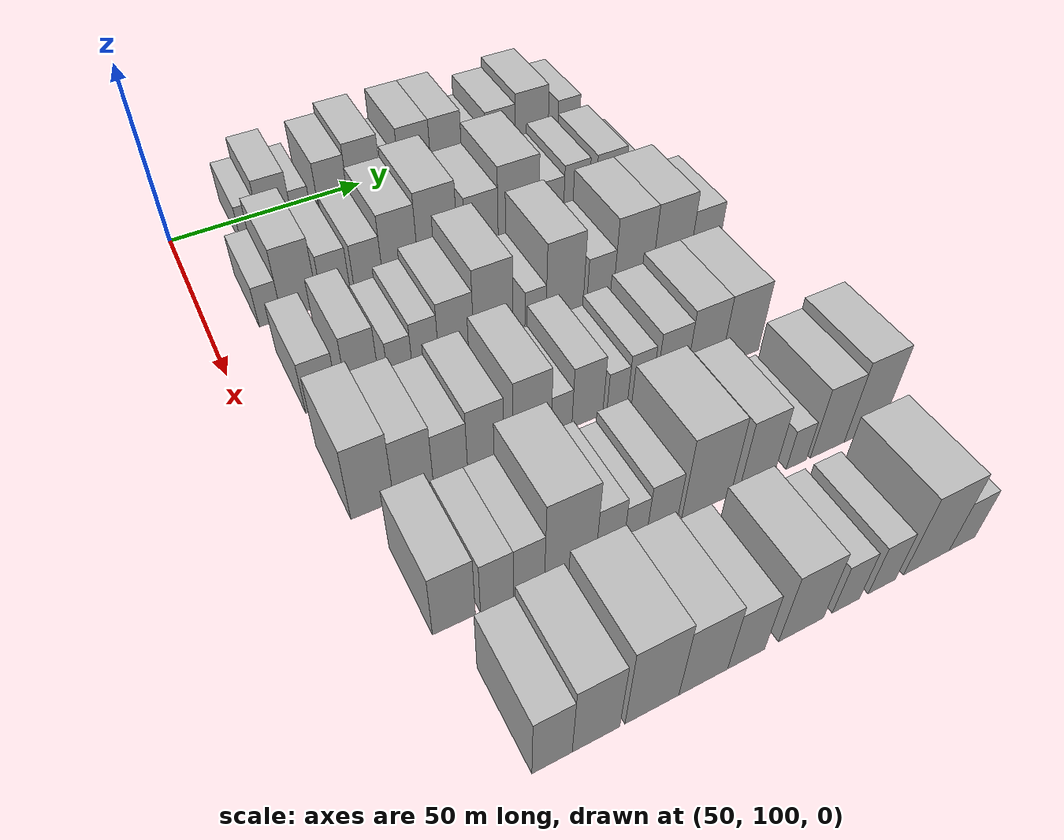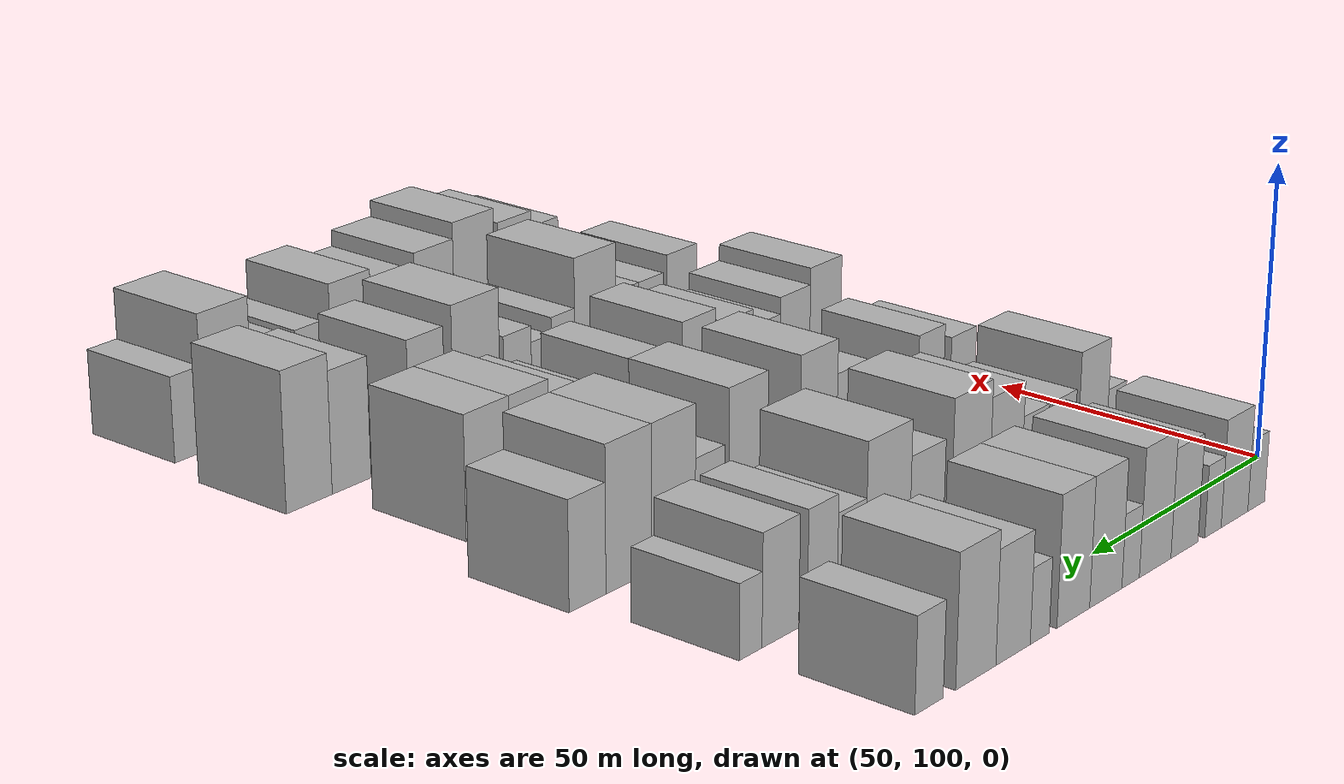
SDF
<sdf version="1.6">
 <world name="default">
  <model name="building_71">
   <static>1</static>
   <pose>50.0000 117.9902 0 0.000000 0.000000 0.000000</pose>
   <link name="link">
    <pose>0 0 6.00 0 0 0</pose>
    <collision name="collision"><geometry><box><size>20.0000 5.2758 12.0000</size></box></geometry></collision>
    <visual name="visual">
     <cast_shadows>0</cast_shadows>
     <geometry><box><size>20.0000 5.2758 12.0000</size></box></geometry>
     <material>
      <script>
       <uri>model://HANNAS_wall/materials/scripts</uri>
       <uri>model://HANNAS_wall/materials/textures</uri>
       <name>vrc/HANNAS_wall</name>
      </script>
     </material>
    </visual>
   </link>
  </model>
  <model name="building_72">
   <static>1</static>
   <pose>50.0000 124.7291 0 0.000000 0.000000 0.000000</pose>
   <link name="link">
    <pose>0 0 9.00 0 0 0</pose>
    <collision name="collision"><geometry><box><size>20.0000 8.2020 18.0000</size></box></geometry></collision>
    <visual name="visual">
     <cast_shadows>0</cast_shadows>
     <geometry><box><size>20.0000 8.2020 18.0000</size></box></geometry>
     <material>
      <script>
       <uri>model://HANNAS_wall/materials/scripts</uri>
       <uri>model://HANNAS_wall/materials/textures</uri>
       <name>vrc/HANNAS_wall</name>
      </script>
     </material>
    </visual>
   </link>
  </model>
  <model name="building_73">
   <static>1</static>
   <pose>50.0000 131.2964 0 0.000000 0.000000 0.000000</pose>
   <link name="link">
    <pose>0 0 6.00 0 0 0</pose>
    <collision name="collision"><geometry><box><size>20.0000 4.9325 12.0000</size></box></geometry></collision>
    <visual name="visual">
     <cast_shadows>0</cast_shadows>
     <geometry><box><size>20.0000 4.9325 12.0000</size></box></geometry>
     <material>
      <script>
       <uri>model://HANNAS_wall/materials/scripts</uri>
       <uri>model://HANNAS_wall/materials/textures</uri>
       <name>vrc/HANNAS_wall</name>
      </script>
     </material>
    </visual>
   </link>
  </model>
  <model name="building_74">
   <static>1</static>
   <pose>50.0000 139.7619 0 0.000000 0.000000 0.000000</pose>
   <link name="link">
    <pose>0 0 9.00 0 0 0</pose>
    <collision name="collision"><geometry><box><size>20.0000 7.9987 18.0000</size></box></geometry></collision>
    <visual name="visual">
     <cast_shadows>0</cast_shadows>
     <geometry><box><size>20.0000 7.9987 18.0000</size></box></geometry>
     <material>
      <script>
       <uri>model://HANNAS_wall/materials/scripts</uri>
       <uri>model://HANNAS_wall/materials/textures</uri>
       <name>vrc/HANNAS_wall</name>
      </script>
     </material>
    </visual>
   </link>
  </model>
  <model name="building_75">
   <static>1</static>
   <pose>50.0000 148.2903 0 0.000000 0.000000 0.000000</pose>
   <link name="link">
    <pose>0 0 10.50 0 0 0</pose>
    <collision name="collision"><geometry><box><size>20.0000 9.0580 21.0000</size></box></geometry></collision>
    <visual name="visual">
     <cast_shadows>0</cast_shadows>
     <geometry><box><size>20.0000 9.0580 21.0000</size></box></geometry>
     <material>
      <script>
       <uri>model://HANNAS_wall/materials/scripts</uri>
       <uri>model://HANNAS_wall/materials/textures</uri>
       <name>vrc/HANNAS_wall</name>
      </script>
     </material>
    </visual>
   </link>
  </model>
  <model name="building_76">
   <static>1</static>
   <pose>50.0000 155.2801 0 0.000000 0.000000 0.000000</pose>
   <link name="link">
    <pose>0 0 6.00 0 0 0</pose>
    <collision name="collision"><geometry><box><size>20.0000 4.9215 12.0000</size></box></geometry></collision>
    <visual name="visual">
     <cast_shadows>0</cast_shadows>
     <geometry><box><size>20.0000 4.9215 12.0000</size></box></geometry>
     <material>
      <script>
       <uri>model://HANNAS_wall/materials/scripts</uri>
       <uri>model://HANNAS_wall/materials/textures</uri>
       <name>vrc/HANNAS_wall</name>
      </script>
     </material>
    </visual>
   </link>
  </model>
  <model name="building_77">
   <static>1</static>
   <pose>50.0000 162.1785 0 0.000000 0.000000 0.000000</pose>
   <link name="link">
    <pose>0 0 10.50 0 0 0</pose>
    <collision name="collision"><geometry><box><size>20.0000 8.8755 21.0000</size></box></geometry></collision>
    <visual name="visual">
     <cast_shadows>0</cast_shadows>
     <geometry><box><size>20.0000 8.8755 21.0000</size></box></geometry>
     <material>
      <script>
       <uri>model://HANNAS_wall/materials/scripts</uri>
       <uri>model://HANNAS_wall/materials/textures</uri>
       <name>vrc/HANNAS_wall</name>
      </script>
     </material>
    </visual>
   </link>
  </model>
  <model name="building_78">
   <static>1</static>
   <pose>50.0000 170.9984 0 0.000000 0.000000 0.000000</pose>
   <link name="link">
    <pose>0 0 10.50 0 0 0</pose>
    <collision name="collision"><geometry><box><size>20.0000 8.7642 21.0000</size></box></geometry></collision>
    <visual name="visual">
     <cast_shadows>0</cast_shadows>
     <geometry><box><size>20.0000 8.7642 21.0000</size></box></geometry>
     <material>
      <script>
       <uri>model://HANNAS_wall/materials/scripts</uri>
       <uri>model://HANNAS_wall/materials/textures</uri>
       <name>vrc/HANNAS_wall</name>
      </script>
     </material>
    </visual>
   </link>
  </model>
  <model name="building_79">
   <static>1</static>
   <pose>50.0000 179.8649 0 0.000000 0.000000 0.000000</pose>
   <link name="link">
    <pose>0 0 6.00 0 0 0</pose>
    <collision name="collision"><geometry><box><size>20.0000 4.9689 12.0000</size></box></geometry></collision>
    <visual name="visual">
     <cast_shadows>0</cast_shadows>
     <geometry><box><size>20.0000 4.9689 12.0000</size></box></geometry>
     <material>
      <script>
       <uri>model://HANNAS_wall/materials/scripts</uri>
       <uri>model://HANNAS_wall/materials/textures</uri>
       <name>vrc/HANNAS_wall</name>
      </script>
     </material>
    </visual>
   </link>
  </model>
  <model name="building_80">
   <static>1</static>
   <pose>50.0000 186.7361 0 0.000000 0.000000 0.000000</pose>
   <link name="link">
    <pose>0 0 9.00 0 0 0</pose>
    <collision name="collision"><geometry><box><size>20.0000 8.7735 18.0000</size></box></geometry></collision>
    <visual name="visual">
     <cast_shadows>0</cast_shadows>
     <geometry><box><size>20.0000 8.7735 18.0000</size></box></geometry>
     <material>
      <script>
       <uri>model://HANNAS_wall/materials/scripts</uri>
       <uri>model://HANNAS_wall/materials/textures</uri>
       <name>vrc/HANNAS_wall</name>
      </script>
     </material>
    </visual>
   </link>
  </model>
  <model name="building_81">
   <static>1</static>
   <pose>50.0000 196.1083 0 0.000000 0.000000 0.000000</pose>
   <link name="link">
    <pose>0 0 10.50 0 0 0</pose>
    <collision name="collision"><geometry><box><size>20.0000 9.9709 21.0000</size></box></geometry></collision>
    <visual name="visual">
     <cast_shadows>0</cast_shadows>
     <geometry><box><size>20.0000 9.9709 21.0000</size></box></geometry>
     <material>
      <script>
       <uri>model://HANNAS_wall/materials/scripts</uri>
       <uri>model://HANNAS_wall/materials/textures</uri>
       <name>vrc/HANNAS_wall</name>
      </script>
     </material>
    </visual>
   </link>
  </model>
  <model name="building_82">
   <static>1</static>
   <pose>50.0000 207.4845 0 0.000000 0.000000 0.000000</pose>
   <link name="link">
    <pose>0 0 7.50 0 0 0</pose>
    <collision name="collision"><geometry><box><size>20.0000 6.7815 15.0000</size></box></geometry></collision>
    <visual name="visual">
     <cast_shadows>0</cast_shadows>
     <geometry><box><size>20.0000 6.7815 15.0000</size></box></geometry>
     <material>
      <script>
       <uri>model://HANNAS_wall/materials/scripts</uri>
       <uri>model://HANNAS_wall/materials/textures</uri>
       <name>vrc/HANNAS_wall</name>
      </script>
     </material>
    </visual>
   </link>
  </model>
  <model name="building_182">
   <static>1</static>
   <pose>79.0000 113.4474 0 0.000000 0.000000 0.000000</pose>
   <link name="link">
    <pose>0 0 6.00 0 0 0</pose>
    <collision name="collision"><geometry><box><size>20.0000 5.4174 12.0000</size></box></geometry></collision>
    <visual name="visual">
     <cast_shadows>0</cast_shadows>
     <geometry><box><size>20.0000 5.4174 12.0000</size></box></geometry>
     <material>
      <script>
       <uri>model://HANNAS_wall/materials/scripts</uri>
       <uri>model://HANNAS_wall/materials/textures</uri>
       <name>vrc/HANNAS_wall</name>
      </script>
     </material>
    </visual>
   </link>
  </model>
  <model name="building_183">
   <static>1</static>
   <pose>79.0000 120.5263 0 0.000000 0.000000 0.000000</pose>
   <link name="link">
    <pose>0 0 10.50 0 0 0</pose>
    <collision name="collision"><geometry><box><size>20.0000 8.7404 21.0000</size></box></geometry></collision>
    <visual name="visual">
     <cast_shadows>0</cast_shadows>
     <geometry><box><size>20.0000 8.7404 21.0000</size></box></geometry>
     <material>
      <script>
       <uri>model://HANNAS_wall/materials/scripts</uri>
       <uri>model://HANNAS_wall/materials/textures</uri>
       <name>vrc/HANNAS_wall</name>
      </script>
     </material>
    </visual>
   </link>
  </model>
  <model name="building_184">
   <static>1</static>
   <pose>79.0000 129.3909 0 0.000000 0.000000 0.000000</pose>
   <link name="link">
    <pose>0 0 7.50 0 0 0</pose>
    <collision name="collision"><geometry><box><size>20.0000 6.9887 15.0000</size></box></geometry></collision>
    <visual name="visual">
     <cast_shadows>0</cast_shadows>
     <geometry><box><size>20.0000 6.9887 15.0000</size></box></geometry>
     <material>
      <script>
       <uri>model://HANNAS_wall/materials/scripts</uri>
       <uri>model://HANNAS_wall/materials/textures</uri>
       <name>vrc/HANNAS_wall</name>
      </script>
     </material>
    </visual>
   </link>
  </model>
  <model name="building_185">
   <static>1</static>
   <pose>79.0000 137.4964 0 0.000000 0.000000 0.000000</pose>
   <link name="link">
    <pose>0 0 7.50 0 0 0</pose>
    <collision name="collision"><geometry><box><size>20.0000 7.2224 15.0000</size></box></geometry></collision>
    <visual name="visual">
     <cast_shadows>0</cast_shadows>
     <geometry><box><size>20.0000 7.2224 15.0000</size></box></geometry>
     <material>
      <script>
       <uri>model://HANNAS_wall/materials/scripts</uri>
       <uri>model://HANNAS_wall/materials/textures</uri>
       <name>vrc/HANNAS_wall</name>
      </script>
     </material>
    </visual>
   </link>
  </model>
  <model name="building_186">
   <static>1</static>
   <pose>79.0000 145.6397 0 0.000000 0.000000 0.000000</pose>
   <link name="link">
    <pose>0 0 10.50 0 0 0</pose>
    <collision name="collision"><geometry><box><size>20.0000 9.0642 21.0000</size></box></geometry></collision>
    <visual name="visual">
     <cast_shadows>0</cast_shadows>
     <geometry><box><size>20.0000 9.0642 21.0000</size></box></geometry>
     <material>
      <script>
       <uri>model://HANNAS_wall/materials/scripts</uri>
       <uri>model://HANNAS_wall/materials/textures</uri>
       <name>vrc/HANNAS_wall</name>
      </script>
     </material>
    </visual>
   </link>
  </model>
  <model name="building_187">
   <static>1</static>
   <pose>79.0000 155.3525 0 0.000000 0.000000 0.000000</pose>
   <link name="link">
    <pose>0 0 12.00 0 0 0</pose>
    <collision name="collision"><geometry><box><size>20.0000 10.3614 24.0000</size></box></geometry></collision>
    <visual name="visual">
     <cast_shadows>0</cast_shadows>
     <geometry><box><size>20.0000 10.3614 24.0000</size></box></geometry>
     <material>
      <script>
       <uri>model://HANNAS_wall/materials/scripts</uri>
       <uri>model://HANNAS_wall/materials/textures</uri>
       <name>vrc/HANNAS_wall</name>
      </script>
     </material>
    </visual>
   </link>
  </model>
  <model name="building_188">
   <static>1</static>
   <pose>79.0000 167.0000 0 0.000000 0.000000 0.000000</pose>
   <link name="link">
    <pose>0 0 9.00 0 0 0</pose>
    <collision name="collision"><geometry><box><size>20.0000 8.9337 18.0000</size></box></geometry></collision>
    <visual name="visual">
     <cast_shadows>0</cast_shadows>
     <geometry><box><size>20.0000 8.9337 18.0000</size></box></geometry>
     <material>
      <script>
       <uri>model://HANNAS_wall/materials/scripts</uri>
       <uri>model://HANNAS_wall/materials/textures</uri>
       <name>vrc/HANNAS_wall</name>
      </script>
     </material>
    </visual>
   </link>
  </model>
  <model name="building_189">
   <static>1</static>
   <pose>79.0000 177.0766 0 0.000000 0.000000 0.000000</pose>
   <link name="link">
    <pose>0 0 12.00 0 0 0</pose>
    <collision name="collision"><geometry><box><size>20.0000 11.2196 24.0000</size></box></geometry></collision>
    <visual name="visual">
     <cast_shadows>0</cast_shadows>
     <geometry><box><size>20.0000 11.2196 24.0000</size></box></geometry>
     <material>
      <script>
       <uri>model://HANNAS_wall/materials/scripts</uri>
       <uri>model://HANNAS_wall/materials/textures</uri>
       <name>vrc/HANNAS_wall</name>
      </script>
     </material>
    </visual>
   </link>
  </model>
  <model name="building_190">
   <static>1</static>
   <pose>79.0000 186.1910 0 0.000000 0.000000 0.000000</pose>
   <link name="link">
    <pose>0 0 7.50 0 0 0</pose>
    <collision name="collision"><geometry><box><size>20.0000 7.0092 15.0000</size></box></geometry></collision>
    <visual name="visual">
     <cast_shadows>0</cast_shadows>
     <geometry><box><size>20.0000 7.0092 15.0000</size></box></geometry>
     <material>
      <script>
       <uri>model://HANNAS_wall/materials/scripts</uri>
       <uri>model://HANNAS_wall/materials/textures</uri>
       <name>vrc/HANNAS_wall</name>
      </script>
     </material>
    </visual>
   </link>
  </model>
  <model name="building_191">
   <static>1</static>
   <pose>79.0000 193.2999 0 0.000000 0.000000 0.000000</pose>
   <link name="link">
    <pose>0 0 9.00 0 0 0</pose>
    <collision name="collision"><geometry><box><size>20.0000 7.2085 18.0000</size></box></geometry></collision>
    <visual name="visual">
     <cast_shadows>0</cast_shadows>
     <geometry><box><size>20.0000 7.2085 18.0000</size></box></geometry>
     <material>
      <script>
       <uri>model://HANNAS_wall/materials/scripts</uri>
       <uri>model://HANNAS_wall/materials/textures</uri>
       <name>vrc/HANNAS_wall</name>
      </script>
     </material>
    </visual>
   </link>
  </model>
  <model name="building_192">
   <static>1</static>
   <pose>79.0000 203.2547 0 0.000000 0.000000 0.000000</pose>
   <link name="link">
    <pose>0 0 9.00 0 0 0</pose>
    <collision name="collision"><geometry><box><size>20.0000 8.7010 18.0000</size></box></geometry></collision>
    <visual name="visual">
     <cast_shadows>0</cast_shadows>
     <geometry><box><size>20.0000 8.7010 18.0000</size></box></geometry>
     <material>
      <script>
       <uri>model://HANNAS_wall/materials/scripts</uri>
       <uri>model://HANNAS_wall/materials/textures</uri>
       <name>vrc/HANNAS_wall</name>
      </script>
     </material>
    </visual>
   </link>
  </model>
  <model name="building_193">
   <static>1</static>
   <pose>79.0000 210.2230 0 0.000000 0.000000 0.000000</pose>
   <link name="link">
    <pose>0 0 6.00 0 0 0</pose>
    <collision name="collision"><geometry><box><size>20.0000 5.2356 12.0000</size></box></geometry></collision>
    <visual name="visual">
     <cast_shadows>0</cast_shadows>
     <geometry><box><size>20.0000 5.2356 12.0000</size></box></geometry>
     <material>
      <script>
       <uri>model://HANNAS_wall/materials/scripts</uri>
       <uri>model://HANNAS_wall/materials/textures</uri>
       <name>vrc/HANNAS_wall</name>
      </script>
     </material>
    </visual>
   </link>
  </model>
  <model name="building_301">
   <static>1</static>
   <pose>108.0000 115.3726 0 0.000000 0.000000 0.000000</pose>
   <link name="link">
    <pose>0 0 7.50 0 0 0</pose>
    <collision name="collision"><geometry><box><size>20.0000 7.3047 15.0000</size></box></geometry></collision>
    <visual name="visual">
     <cast_shadows>0</cast_shadows>
     <geometry><box><size>20.0000 7.3047 15.0000</size></box></geometry>
     <material>
      <script>
       <uri>model://HANNAS_wall/materials/scripts</uri>
       <uri>model://HANNAS_wall/materials/textures</uri>
       <name>vrc/HANNAS_wall</name>
      </script>
     </material>
    </visual>
   </link>
  </model>
  <model name="building_302">
   <static>1</static>
   <pose>108.0000 124.7236 0 0.000000 0.000000 0.000000</pose>
   <link name="link">
    <pose>0 0 9.00 0 0 0</pose>
    <collision name="collision"><geometry><box><size>20.0000 7.3973 18.0000</size></box></geometry></collision>
    <visual name="visual">
     <cast_shadows>0</cast_shadows>
     <geometry><box><size>20.0000 7.3973 18.0000</size></box></geometry>
     <material>
      <script>
       <uri>model://HANNAS_wall/materials/scripts</uri>
       <uri>model://HANNAS_wall/materials/textures</uri>
       <name>vrc/HANNAS_wall</name>
      </script>
     </material>
    </visual>
   </link>
  </model>
  <model name="building_303">
   <static>1</static>
   <pose>108.0000 133.2756 0 0.000000 0.000000 0.000000</pose>
   <link name="link">
    <pose>0 0 6.00 0 0 0</pose>
    <collision name="collision"><geometry><box><size>20.0000 5.7067 12.0000</size></box></geometry></collision>
    <visual name="visual">
     <cast_shadows>0</cast_shadows>
     <geometry><box><size>20.0000 5.7067 12.0000</size></box></geometry>
     <material>
      <script>
       <uri>model://HANNAS_wall/materials/scripts</uri>
       <uri>model://HANNAS_wall/materials/textures</uri>
       <name>vrc/HANNAS_wall</name>
      </script>
     </material>
    </visual>
   </link>
  </model>
  <model name="building_304">
   <static>1</static>
   <pose>108.0000 139.2570 0 0.000000 0.000000 0.000000</pose>
   <link name="link">
    <pose>0 0 7.50 0 0 0</pose>
    <collision name="collision"><geometry><box><size>20.0000 6.2562 15.0000</size></box></geometry></collision>
    <visual name="visual">
     <cast_shadows>0</cast_shadows>
     <geometry><box><size>20.0000 6.2562 15.0000</size></box></geometry>
     <material>
      <script>
       <uri>model://HANNAS_wall/materials/scripts</uri>
       <uri>model://HANNAS_wall/materials/textures</uri>
       <name>vrc/HANNAS_wall</name>
      </script>
     </material>
    </visual>
   </link>
  </model>
  <model name="building_305">
   <static>1</static>
   <pose>108.0000 146.6408 0 0.000000 0.000000 0.000000</pose>
   <link name="link">
    <pose>0 0 9.00 0 0 0</pose>
    <collision name="collision"><geometry><box><size>20.0000 8.5114 18.0000</size></box></geometry></collision>
    <visual name="visual">
     <cast_shadows>0</cast_shadows>
     <geometry><box><size>20.0000 8.5114 18.0000</size></box></geometry>
     <material>
      <script>
       <uri>model://HANNAS_wall/materials/scripts</uri>
       <uri>model://HANNAS_wall/materials/textures</uri>
       <name>vrc/HANNAS_wall</name>
      </script>
     </material>
    </visual>
   </link>
  </model>
  <model name="building_306">
   <static>1</static>
   <pose>108.0000 155.7515 0 0.000000 0.000000 0.000000</pose>
   <link name="link">
    <pose>0 0 12.00 0 0 0</pose>
    <collision name="collision"><geometry><box><size>20.0000 9.7099 24.0000</size></box></geometry></collision>
    <visual name="visual">
     <cast_shadows>0</cast_shadows>
     <geometry><box><size>20.0000 9.7099 24.0000</size></box></geometry>
     <material>
      <script>
       <uri>model://HANNAS_wall/materials/scripts</uri>
       <uri>model://HANNAS_wall/materials/textures</uri>
       <name>vrc/HANNAS_wall</name>
      </script>
     </material>
    </visual>
   </link>
  </model>
  <model name="building_307">
   <static>1</static>
   <pose>108.0000 166.3014 0 0.000000 0.000000 0.000000</pose>
   <link name="link">
    <pose>0 0 6.00 0 0 0</pose>
    <collision name="collision"><geometry><box><size>20.0000 5.3900 12.0000</size></box></geometry></collision>
    <visual name="visual">
     <cast_shadows>0</cast_shadows>
     <geometry><box><size>20.0000 5.3900 12.0000</size></box></geometry>
     <material>
      <script>
       <uri>model://HANNAS_wall/materials/scripts</uri>
       <uri>model://HANNAS_wall/materials/textures</uri>
       <name>vrc/HANNAS_wall</name>
      </script>
     </material>
    </visual>
   </link>
  </model>
  <model name="building_308">
   <static>1</static>
   <pose>108.0000 173.8607 0 0.000000 0.000000 0.000000</pose>
   <link name="link">
    <pose>0 0 12.00 0 0 0</pose>
    <collision name="collision"><geometry><box><size>20.0000 9.7286 24.0000</size></box></geometry></collision>
    <visual name="visual">
     <cast_shadows>0</cast_shadows>
     <geometry><box><size>20.0000 9.7286 24.0000</size></box></geometry>
     <material>
      <script>
       <uri>model://HANNAS_wall/materials/scripts</uri>
       <uri>model://HANNAS_wall/materials/textures</uri>
       <name>vrc/HANNAS_wall</name>
      </script>
     </material>
    </visual>
   </link>
  </model>
  <model name="building_309">
   <static>1</static>
   <pose>108.0000 183.3002 0 0.000000 0.000000 0.000000</pose>
   <link name="link">
    <pose>0 0 7.50 0 0 0</pose>
    <collision name="collision"><geometry><box><size>20.0000 7.1505 15.0000</size></box></geometry></collision>
    <visual name="visual">
     <cast_shadows>0</cast_shadows>
     <geometry><box><size>20.0000 7.1505 15.0000</size></box></geometry>
     <material>
      <script>
       <uri>model://HANNAS_wall/materials/scripts</uri>
       <uri>model://HANNAS_wall/materials/textures</uri>
       <name>vrc/HANNAS_wall</name>
      </script>
     </material>
    </visual>
   </link>
  </model>
  <model name="building_310">
   <static>1</static>
   <pose>108.0000 192.1241 0 0.000000 0.000000 0.000000</pose>
   <link name="link">
    <pose>0 0 12.00 0 0 0</pose>
    <collision name="collision"><geometry><box><size>20.0000 10.4971 24.0000</size></box></geometry></collision>
    <visual name="visual">
     <cast_shadows>0</cast_shadows>
     <geometry><box><size>20.0000 10.4971 24.0000</size></box></geometry>
     <material>
      <script>
       <uri>model://HANNAS_wall/materials/scripts</uri>
       <uri>model://HANNAS_wall/materials/textures</uri>
       <name>vrc/HANNAS_wall</name>
      </script>
     </material>
    </visual>
   </link>
  </model>
  <model name="building_311">
   <static>1</static>
   <pose>108.0000 202.6365 0 0.000000 0.000000 0.000000</pose>
   <link name="link">
    <pose>0 0 12.00 0 0 0</pose>
    <collision name="collision"><geometry><box><size>20.0000 10.5278 24.0000</size></box></geometry></collision>
    <visual name="visual">
     <cast_shadows>0</cast_shadows>
     <geometry><box><size>20.0000 10.5278 24.0000</size></box></geometry>
     <material>
      <script>
       <uri>model://HANNAS_wall/materials/scripts</uri>
       <uri>model://HANNAS_wall/materials/textures</uri>
       <name>vrc/HANNAS_wall</name>
      </script>
     </material>
    </visual>
   </link>
  </model>
  <model name="building_312">
   <static>1</static>
   <pose>108.0000 212.0618 0 0.000000 0.000000 0.000000</pose>
   <link name="link">
    <pose>0 0 9.00 0 0 0</pose>
    <collision name="collision"><geometry><box><size>20.0000 8.3226 18.0000</size></box></geometry></collision>
    <visual name="visual">
     <cast_shadows>0</cast_shadows>
     <geometry><box><size>20.0000 8.3226 18.0000</size></box></geometry>
     <material>
      <script>
       <uri>model://HANNAS_wall/materials/scripts</uri>
       <uri>model://HANNAS_wall/materials/textures</uri>
       <name>vrc/HANNAS_wall</name>
      </script>
     </material>
    </visual>
   </link>
  </model>
  <model name="building_416">
   <static>1</static>
   <pose>137.0000 115.1902 0 0.000000 0.000000 0.000000</pose>
   <link name="link">
    <pose>0 0 10.50 0 0 0</pose>
    <collision name="collision"><geometry><box><size>20.0000 8.9206 21.0000</size></box></geometry></collision>
    <visual name="visual">
     <cast_shadows>0</cast_shadows>
     <geometry><box><size>20.0000 8.9206 21.0000</size></box></geometry>
     <material>
      <script>
       <uri>model://HANNAS_wall/materials/scripts</uri>
       <uri>model://HANNAS_wall/materials/textures</uri>
       <name>vrc/HANNAS_wall</name>
      </script>
     </material>
    </visual>
   </link>
  </model>
  <model name="building_417">
   <static>1</static>
   <pose>137.0000 123.8461 0 0.000000 0.000000 0.000000</pose>
   <link name="link">
    <pose>0 0 9.00 0 0 0</pose>
    <collision name="collision"><geometry><box><size>20.0000 8.3913 18.0000</size></box></geometry></collision>
    <visual name="visual">
     <cast_shadows>0</cast_shadows>
     <geometry><box><size>20.0000 8.3913 18.0000</size></box></geometry>
     <material>
      <script>
       <uri>model://HANNAS_wall/materials/scripts</uri>
       <uri>model://HANNAS_wall/materials/textures</uri>
       <name>vrc/HANNAS_wall</name>
      </script>
     </material>
    </visual>
   </link>
  </model>
  <model name="building_418">
   <static>1</static>
   <pose>137.0000 131.7858 0 0.000000 0.000000 0.000000</pose>
   <link name="link">
    <pose>0 0 7.50 0 0 0</pose>
    <collision name="collision"><geometry><box><size>20.0000 7.4880 15.0000</size></box></geometry></collision>
    <visual name="visual">
     <cast_shadows>0</cast_shadows>
     <geometry><box><size>20.0000 7.4880 15.0000</size></box></geometry>
     <material>
      <script>
       <uri>model://HANNAS_wall/materials/scripts</uri>
       <uri>model://HANNAS_wall/materials/textures</uri>
       <name>vrc/HANNAS_wall</name>
      </script>
     </material>
    </visual>
   </link>
  </model>
  <model name="building_419">
   <static>1</static>
   <pose>137.0000 139.5929 0 0.000000 0.000000 0.000000</pose>
   <link name="link">
    <pose>0 0 9.00 0 0 0</pose>
    <collision name="collision"><geometry><box><size>20.0000 8.1262 18.0000</size></box></geometry></collision>
    <visual name="visual">
     <cast_shadows>0</cast_shadows>
     <geometry><box><size>20.0000 8.1262 18.0000</size></box></geometry>
     <material>
      <script>
       <uri>model://HANNAS_wall/materials/scripts</uri>
       <uri>model://HANNAS_wall/materials/textures</uri>
       <name>vrc/HANNAS_wall</name>
      </script>
     </material>
    </visual>
   </link>
  </model>
  <model name="building_420">
   <static>1</static>
   <pose>137.0000 150.0277 0 0.000000 0.000000 0.000000</pose>
   <link name="link">
    <pose>0 0 10.50 0 0 0</pose>
    <collision name="collision"><geometry><box><size>20.0000 8.7435 21.0000</size></box></geometry></collision>
    <visual name="visual">
     <cast_shadows>0</cast_shadows>
     <geometry><box><size>20.0000 8.7435 21.0000</size></box></geometry>
     <material>
      <script>
       <uri>model://HANNAS_wall/materials/scripts</uri>
       <uri>model://HANNAS_wall/materials/textures</uri>
       <name>vrc/HANNAS_wall</name>
      </script>
     </material>
    </visual>
   </link>
  </model>
  <model name="building_421">
   <static>1</static>
   <pose>137.0000 156.8727 0 0.000000 0.000000 0.000000</pose>
   <link name="link">
    <pose>0 0 6.00 0 0 0</pose>
    <collision name="collision"><geometry><box><size>20.0000 4.9464 12.0000</size></box></geometry></collision>
    <visual name="visual">
     <cast_shadows>0</cast_shadows>
     <geometry><box><size>20.0000 4.9464 12.0000</size></box></geometry>
     <material>
      <script>
       <uri>model://HANNAS_wall/materials/scripts</uri>
       <uri>model://HANNAS_wall/materials/textures</uri>
       <name>vrc/HANNAS_wall</name>
      </script>
     </material>
    </visual>
   </link>
  </model>
  <model name="building_422">
   <static>1</static>
   <pose>137.0000 163.0637 0 0.000000 0.000000 0.000000</pose>
   <link name="link">
    <pose>0 0 9.00 0 0 0</pose>
    <collision name="collision"><geometry><box><size>20.0000 7.4354 18.0000</size></box></geometry></collision>
    <visual name="visual">
     <cast_shadows>0</cast_shadows>
     <geometry><box><size>20.0000 7.4354 18.0000</size></box></geometry>
     <material>
      <script>
       <uri>model://HANNAS_wall/materials/scripts</uri>
       <uri>model://HANNAS_wall/materials/textures</uri>
       <name>vrc/HANNAS_wall</name>
      </script>
     </material>
    </visual>
   </link>
  </model>
  <model name="building_423">
   <static>1</static>
   <pose>137.0000 170.3075 0 0.000000 0.000000 0.000000</pose>
   <link name="link">
    <pose>0 0 6.00 0 0 0</pose>
    <collision name="collision"><geometry><box><size>20.0000 5.0522 12.0000</size></box></geometry></collision>
    <visual name="visual">
     <cast_shadows>0</cast_shadows>
     <geometry><box><size>20.0000 5.0522 12.0000</size></box></geometry>
     <material>
      <script>
       <uri>model://HANNAS_wall/materials/scripts</uri>
       <uri>model://HANNAS_wall/materials/textures</uri>
       <name>vrc/HANNAS_wall</name>
      </script>
     </material>
    </visual>
   </link>
  </model>
  <model name="building_424">
   <static>1</static>
   <pose>137.0000 175.8350 0 0.000000 0.000000 0.000000</pose>
   <link name="link">
    <pose>0 0 7.50 0 0 0</pose>
    <collision name="collision"><geometry><box><size>20.0000 6.0028 15.0000</size></box></geometry></collision>
    <visual name="visual">
     <cast_shadows>0</cast_shadows>
     <geometry><box><size>20.0000 6.0028 15.0000</size></box></geometry>
     <material>
      <script>
       <uri>model://HANNAS_wall/materials/scripts</uri>
       <uri>model://HANNAS_wall/materials/textures</uri>
       <name>vrc/HANNAS_wall</name>
      </script>
     </material>
    </visual>
   </link>
  </model>
  <model name="building_425">
   <static>1</static>
   <pose>137.0000 183.7239 0 0.000000 0.000000 0.000000</pose>
   <link name="link">
    <pose>0 0 9.00 0 0 0</pose>
    <collision name="collision"><geometry><box><size>20.0000 7.7748 18.0000</size></box></geometry></collision>
    <visual name="visual">
     <cast_shadows>0</cast_shadows>
     <geometry><box><size>20.0000 7.7748 18.0000</size></box></geometry>
     <material>
      <script>
       <uri>model://HANNAS_wall/materials/scripts</uri>
       <uri>model://HANNAS_wall/materials/textures</uri>
       <name>vrc/HANNAS_wall</name>
      </script>
     </material>
    </visual>
   </link>
  </model>
  <model name="building_426">
   <static>1</static>
   <pose>137.0000 192.2063 0 0.000000 0.000000 0.000000</pose>
   <link name="link">
    <pose>0 0 10.50 0 0 0</pose>
    <collision name="collision"><geometry><box><size>20.0000 9.1900 21.0000</size></box></geometry></collision>
    <visual name="visual">
     <cast_shadows>0</cast_shadows>
     <geometry><box><size>20.0000 9.1900 21.0000</size></box></geometry>
     <material>
      <script>
       <uri>model://HANNAS_wall/materials/scripts</uri>
       <uri>model://HANNAS_wall/materials/textures</uri>
       <name>vrc/HANNAS_wall</name>
      </script>
     </material>
    </visual>
   </link>
  </model>
  <model name="building_427">
   <static>1</static>
   <pose>137.0000 201.8861 0 0.000000 0.000000 0.000000</pose>
   <link name="link">
    <pose>0 0 10.50 0 0 0</pose>
    <collision name="collision"><geometry><box><size>20.0000 10.1696 21.0000</size></box></geometry></collision>
    <visual name="visual">
     <cast_shadows>0</cast_shadows>
     <geometry><box><size>20.0000 10.1696 21.0000</size></box></geometry>
     <material>
      <script>
       <uri>model://HANNAS_wall/materials/scripts</uri>
       <uri>model://HANNAS_wall/materials/textures</uri>
       <name>vrc/HANNAS_wall</name>
      </script>
     </material>
    </visual>
   </link>
  </model>
  <model name="building_538">
   <static>1</static>
   <pose>166.0000 119.0607 0 0.000000 0.000000 0.000000</pose>
   <link name="link">
    <pose>0 0 9.00 0 0 0</pose>
    <collision name="collision"><geometry><box><size>20.0000 8.3499 18.0000</size></box></geometry></collision>
    <visual name="visual">
     <cast_shadows>0</cast_shadows>
     <geometry><box><size>20.0000 8.3499 18.0000</size></box></geometry>
     <material>
      <script>
       <uri>model://HANNAS_wall/materials/scripts</uri>
       <uri>model://HANNAS_wall/materials/textures</uri>
       <name>vrc/HANNAS_wall</name>
      </script>
     </material>
    </visual>
   </link>
  </model>
  <model name="building_539">
   <static>1</static>
   <pose>166.0000 127.5387 0 0.000000 0.000000 0.000000</pose>
   <link name="link">
    <pose>0 0 7.50 0 0 0</pose>
    <collision name="collision"><geometry><box><size>20.0000 6.6061 15.0000</size></box></geometry></collision>
    <visual name="visual">
     <cast_shadows>0</cast_shadows>
     <geometry><box><size>20.0000 6.6061 15.0000</size></box></geometry>
     <material>
      <script>
       <uri>model://HANNAS_wall/materials/scripts</uri>
       <uri>model://HANNAS_wall/materials/textures</uri>
       <name>vrc/HANNAS_wall</name>
      </script>
     </material>
    </visual>
   </link>
  </model>
  <model name="building_540">
   <static>1</static>
   <pose>166.0000 134.0152 0 0.000000 0.000000 0.000000</pose>
   <link name="link">
    <pose>0 0 7.50 0 0 0</pose>
    <collision name="collision"><geometry><box><size>20.0000 6.3470 15.0000</size></box></geometry></collision>
    <visual name="visual">
     <cast_shadows>0</cast_shadows>
     <geometry><box><size>20.0000 6.3470 15.0000</size></box></geometry>
     <material>
      <script>
       <uri>model://HANNAS_wall/materials/scripts</uri>
       <uri>model://HANNAS_wall/materials/textures</uri>
       <name>vrc/HANNAS_wall</name>
      </script>
     </material>
    </visual>
   </link>
  </model>
  <model name="building_541">
   <static>1</static>
   <pose>166.0000 142.6023 0 0.000000 0.000000 0.000000</pose>
   <link name="link">
    <pose>0 0 12.00 0 0 0</pose>
    <collision name="collision"><geometry><box><size>20.0000 10.8272 24.0000</size></box></geometry></collision>
    <visual name="visual">
     <cast_shadows>0</cast_shadows>
     <geometry><box><size>20.0000 10.8272 24.0000</size></box></geometry>
     <material>
      <script>
       <uri>model://HANNAS_wall/materials/scripts</uri>
       <uri>model://HANNAS_wall/materials/textures</uri>
       <name>vrc/HANNAS_wall</name>
      </script>
     </material>
    </visual>
   </link>
  </model>
  <model name="building_542">
   <static>1</static>
   <pose>166.0000 151.0432 0 0.000000 0.000000 0.000000</pose>
   <link name="link">
    <pose>0 0 7.50 0 0 0</pose>
    <collision name="collision"><geometry><box><size>20.0000 6.0546 15.0000</size></box></geometry></collision>
    <visual name="visual">
     <cast_shadows>0</cast_shadows>
     <geometry><box><size>20.0000 6.0546 15.0000</size></box></geometry>
     <material>
      <script>
       <uri>model://HANNAS_wall/materials/scripts</uri>
       <uri>model://HANNAS_wall/materials/textures</uri>
       <name>vrc/HANNAS_wall</name>
      </script>
     </material>
    </visual>
   </link>
  </model>
  <model name="building_543">
   <static>1</static>
   <pose>166.0000 156.6307 0 0.000000 0.000000 0.000000</pose>
   <link name="link">
    <pose>0 0 6.00 0 0 0</pose>
    <collision name="collision"><geometry><box><size>20.0000 5.1204 12.0000</size></box></geometry></collision>
    <visual name="visual">
     <cast_shadows>0</cast_shadows>
     <geometry><box><size>20.0000 5.1204 12.0000</size></box></geometry>
     <material>
      <script>
       <uri>model://HANNAS_wall/materials/scripts</uri>
       <uri>model://HANNAS_wall/materials/textures</uri>
       <name>vrc/HANNAS_wall</name>
      </script>
     </material>
    </visual>
   </link>
  </model>
  <model name="building_544">
   <static>1</static>
   <pose>166.0000 162.6672 0 0.000000 0.000000 0.000000</pose>
   <link name="link">
    <pose>0 0 7.50 0 0 0</pose>
    <collision name="collision"><geometry><box><size>20.0000 6.9527 15.0000</size></box></geometry></collision>
    <visual name="visual">
     <cast_shadows>0</cast_shadows>
     <geometry><box><size>20.0000 6.9527 15.0000</size></box></geometry>
     <material>
      <script>
       <uri>model://HANNAS_wall/materials/scripts</uri>
       <uri>model://HANNAS_wall/materials/textures</uri>
       <name>vrc/HANNAS_wall</name>
      </script>
     </material>
    </visual>
   </link>
  </model>
  <model name="building_545">
   <static>1</static>
   <pose>166.0000 172.8616 0 0.000000 0.000000 0.000000</pose>
   <link name="link">
    <pose>0 0 12.00 0 0 0</pose>
    <collision name="collision"><geometry><box><size>20.0000 11.4361 24.0000</size></box></geometry></collision>
    <visual name="visual">
     <cast_shadows>0</cast_shadows>
     <geometry><box><size>20.0000 11.4361 24.0000</size></box></geometry>
     <material>
      <script>
       <uri>model://HANNAS_wall/materials/scripts</uri>
       <uri>model://HANNAS_wall/materials/textures</uri>
       <name>vrc/HANNAS_wall</name>
      </script>
     </material>
    </visual>
   </link>
  </model>
  <model name="building_546">
   <static>1</static>
   <pose>166.0000 184.8569 0 0.000000 0.000000 0.000000</pose>
   <link name="link">
    <pose>0 0 10.50 0 0 0</pose>
    <collision name="collision"><geometry><box><size>20.0000 8.5544 21.0000</size></box></geometry></collision>
    <visual name="visual">
     <cast_shadows>0</cast_shadows>
     <geometry><box><size>20.0000 8.5544 21.0000</size></box></geometry>
     <material>
      <script>
       <uri>model://HANNAS_wall/materials/scripts</uri>
       <uri>model://HANNAS_wall/materials/textures</uri>
       <name>vrc/HANNAS_wall</name>
      </script>
     </material>
    </visual>
   </link>
  </model>
  <model name="building_547">
   <static>1</static>
   <pose>166.0000 194.6454 0 0.000000 0.000000 0.000000</pose>
   <link name="link">
    <pose>0 0 6.00 0 0 0</pose>
    <collision name="collision"><geometry><box><size>20.0000 5.0226 12.0000</size></box></geometry></collision>
    <visual name="visual">
     <cast_shadows>0</cast_shadows>
     <geometry><box><size>20.0000 5.0226 12.0000</size></box></geometry>
     <material>
      <script>
       <uri>model://HANNAS_wall/materials/scripts</uri>
       <uri>model://HANNAS_wall/materials/textures</uri>
       <name>vrc/HANNAS_wall</name>
      </script>
     </material>
    </visual>
   </link>
  </model>
  <model name="building_548">
   <static>1</static>
   <pose>166.0000 202.5485 0 0.000000 0.000000 0.000000</pose>
   <link name="link">
    <pose>0 0 10.50 0 0 0</pose>
    <collision name="collision"><geometry><box><size>20.0000 8.7836 21.0000</size></box></geometry></collision>
    <visual name="visual">
     <cast_shadows>0</cast_shadows>
     <geometry><box><size>20.0000 8.7836 21.0000</size></box></geometry>
     <material>
      <script>
       <uri>model://HANNAS_wall/materials/scripts</uri>
       <uri>model://HANNAS_wall/materials/textures</uri>
       <name>vrc/HANNAS_wall</name>
      </script>
     </material>
    </visual>
   </link>
  </model>
  <model name="building_549">
   <static>1</static>
   <pose>166.0000 212.0170 0 0.000000 0.000000 0.000000</pose>
   <link name="link">
    <pose>0 0 12.00 0 0 0</pose>
    <collision name="collision"><geometry><box><size>20.0000 10.1535 24.0000</size></box></geometry></collision>
    <visual name="visual">
     <cast_shadows>0</cast_shadows>
     <geometry><box><size>20.0000 10.1535 24.0000</size></box></geometry>
     <material>
      <script>
       <uri>model://HANNAS_wall/materials/scripts</uri>
       <uri>model://HANNAS_wall/materials/textures</uri>
       <name>vrc/HANNAS_wall</name>
      </script>
     </material>
    </visual>
   </link>
  </model>
  <model name="building_654">
   <static>1</static>
   <pose>195.0000 122.8777 0 0.000000 0.000000 0.000000</pose>
   <link name="link">
    <pose>0 0 9.00 0 0 0</pose>
    <collision name="collision"><geometry><box><size>20.0000 7.3535 18.0000</size></box></geometry></collision>
    <visual name="visual">
     <cast_shadows>0</cast_shadows>
     <geometry><box><size>20.0000 7.3535 18.0000</size></box></geometry>
     <material>
      <script>
       <uri>model://HANNAS_wall/materials/scripts</uri>
       <uri>model://HANNAS_wall/materials/textures</uri>
       <name>vrc/HANNAS_wall</name>
      </script>
     </material>
    </visual>
   </link>
  </model>
  <model name="building_655">
   <static>1</static>
   <pose>195.0000 131.0417 0 0.000000 0.000000 0.000000</pose>
   <link name="link">
    <pose>0 0 10.50 0 0 0</pose>
    <collision name="collision"><geometry><box><size>20.0000 8.9746 21.0000</size></box></geometry></collision>
    <visual name="visual">
     <cast_shadows>0</cast_shadows>
     <geometry><box><size>20.0000 8.9746 21.0000</size></box></geometry>
     <material>
      <script>
       <uri>model://HANNAS_wall/materials/scripts</uri>
       <uri>model://HANNAS_wall/materials/textures</uri>
       <name>vrc/HANNAS_wall</name>
      </script>
     </material>
    </visual>
   </link>
  </model>
  <model name="building_656">
   <static>1</static>
   <pose>195.0000 141.8290 0 0.000000 0.000000 0.000000</pose>
   <link name="link">
    <pose>0 0 12.00 0 0 0</pose>
    <collision name="collision"><geometry><box><size>20.0000 10.6000 24.0000</size></box></geometry></collision>
    <visual name="visual">
     <cast_shadows>0</cast_shadows>
     <geometry><box><size>20.0000 10.6000 24.0000</size></box></geometry>
     <material>
      <script>
       <uri>model://HANNAS_wall/materials/scripts</uri>
       <uri>model://HANNAS_wall/materials/textures</uri>
       <name>vrc/HANNAS_wall</name>
      </script>
     </material>
    </visual>
   </link>
  </model>
  <model name="building_657">
   <static>1</static>
   <pose>195.0000 152.0999 0 0.000000 0.000000 0.000000</pose>
   <link name="link">
    <pose>0 0 10.50 0 0 0</pose>
    <collision name="collision"><geometry><box><size>20.0000 9.9417 21.0000</size></box></geometry></collision>
    <visual name="visual">
     <cast_shadows>0</cast_shadows>
     <geometry><box><size>20.0000 9.9417 21.0000</size></box></geometry>
     <material>
      <script>
       <uri>model://HANNAS_wall/materials/scripts</uri>
       <uri>model://HANNAS_wall/materials/textures</uri>
       <name>vrc/HANNAS_wall</name>
      </script>
     </material>
    </visual>
   </link>
  </model>
  <model name="building_658">
   <static>1</static>
   <pose>195.0000 160.9872 0 0.000000 0.000000 0.000000</pose>
   <link name="link">
    <pose>0 0 9.00 0 0 0</pose>
    <collision name="collision"><geometry><box><size>20.0000 7.8331 18.0000</size></box></geometry></collision>
    <visual name="visual">
     <cast_shadows>0</cast_shadows>
     <geometry><box><size>20.0000 7.8331 18.0000</size></box></geometry>
     <material>
      <script>
       <uri>model://HANNAS_wall/materials/scripts</uri>
       <uri>model://HANNAS_wall/materials/textures</uri>
       <name>vrc/HANNAS_wall</name>
      </script>
     </material>
    </visual>
   </link>
  </model>
  <model name="building_659">
   <static>1</static>
   <pose>195.0000 172.8575 0 0.000000 0.000000 0.000000</pose>
   <link name="link">
    <pose>0 0 10.50 0 0 0</pose>
    <collision name="collision"><geometry><box><size>20.0000 9.9075 21.0000</size></box></geometry></collision>
    <visual name="visual">
     <cast_shadows>0</cast_shadows>
     <geometry><box><size>20.0000 9.9075 21.0000</size></box></geometry>
     <material>
      <script>
       <uri>model://HANNAS_wall/materials/scripts</uri>
       <uri>model://HANNAS_wall/materials/textures</uri>
       <name>vrc/HANNAS_wall</name>
      </script>
     </material>
    </visual>
   </link>
  </model>
  <model name="building_660">
   <static>1</static>
   <pose>195.0000 182.9259 0 0.000000 0.000000 0.000000</pose>
   <link name="link">
    <pose>0 0 7.50 0 0 0</pose>
    <collision name="collision"><geometry><box><size>20.0000 6.2292 15.0000</size></box></geometry></collision>
    <visual name="visual">
     <cast_shadows>0</cast_shadows>
     <geometry><box><size>20.0000 6.2292 15.0000</size></box></geometry>
     <material>
      <script>
       <uri>model://HANNAS_wall/materials/scripts</uri>
       <uri>model://HANNAS_wall/materials/textures</uri>
       <name>vrc/HANNAS_wall</name>
      </script>
     </material>
    </visual>
   </link>
  </model>
  <model name="building_661">
   <static>1</static>
   <pose>195.0000 191.2169 0 0.000000 0.000000 0.000000</pose>
   <link name="link">
    <pose>0 0 7.50 0 0 0</pose>
    <collision name="collision"><geometry><box><size>20.0000 6.3529 15.0000</size></box></geometry></collision>
    <visual name="visual">
     <cast_shadows>0</cast_shadows>
     <geometry><box><size>20.0000 6.3529 15.0000</size></box></geometry>
     <material>
      <script>
       <uri>model://HANNAS_wall/materials/scripts</uri>
       <uri>model://HANNAS_wall/materials/textures</uri>
       <name>vrc/HANNAS_wall</name>
      </script>
     </material>
    </visual>
   </link>
  </model>
  <model name="building_662">
   <static>1</static>
   <pose>195.0000 201.9695 0 0.000000 0.000000 0.000000</pose>
   <link name="link">
    <pose>0 0 12.00 0 0 0</pose>
    <collision name="collision"><geometry><box><size>20.0000 11.1523 24.0000</size></box></geometry></collision>
    <visual name="visual">
     <cast_shadows>0</cast_shadows>
     <geometry><box><size>20.0000 11.1523 24.0000</size></box></geometry>
     <material>
      <script>
       <uri>model://HANNAS_wall/materials/scripts</uri>
       <uri>model://HANNAS_wall/materials/textures</uri>
       <name>vrc/HANNAS_wall</name>
      </script>
     </material>
    </visual>
   </link>
  </model>
  <model name="building_663">
   <static>1</static>
   <pose>195.0000 210.7825 0 0.000000 0.000000 0.000000</pose>
   <link name="link">
    <pose>0 0 7.50 0 0 0</pose>
    <collision name="collision"><geometry><box><size>20.0000 6.4737 15.0000</size></box></geometry></collision>
    <visual name="visual">
     <cast_shadows>0</cast_shadows>
     <geometry><box><size>20.0000 6.4737 15.0000</size></box></geometry>
     <material>
      <script>
       <uri>model://HANNAS_wall/materials/scripts</uri>
       <uri>model://HANNAS_wall/materials/textures</uri>
       <name>vrc/HANNAS_wall</name>
      </script>
     </material>
    </visual>
   </link>
  </model>
 </world>
</sdf>
